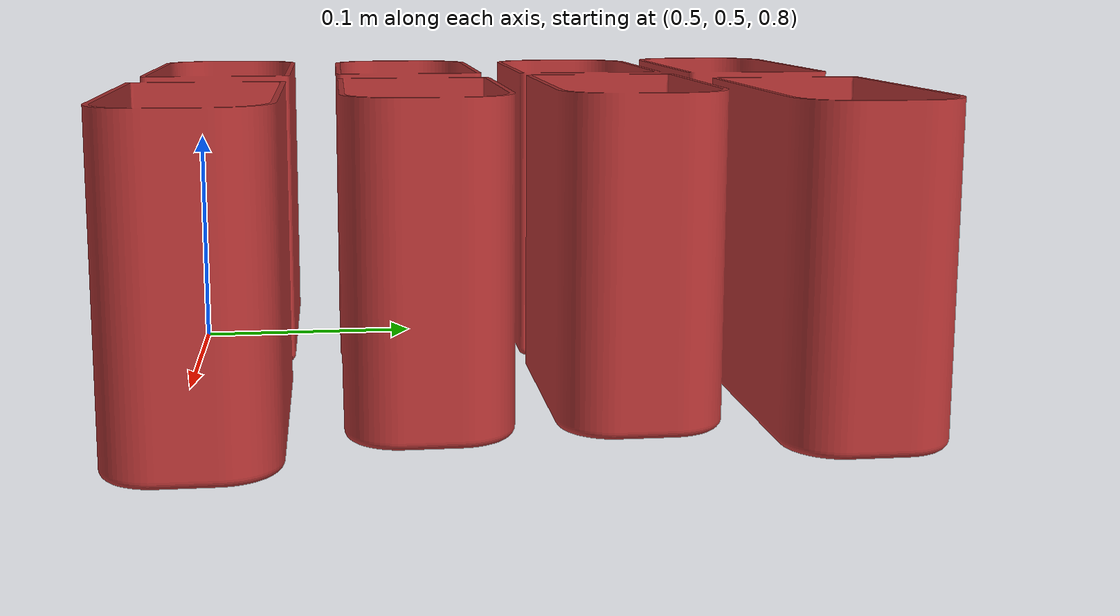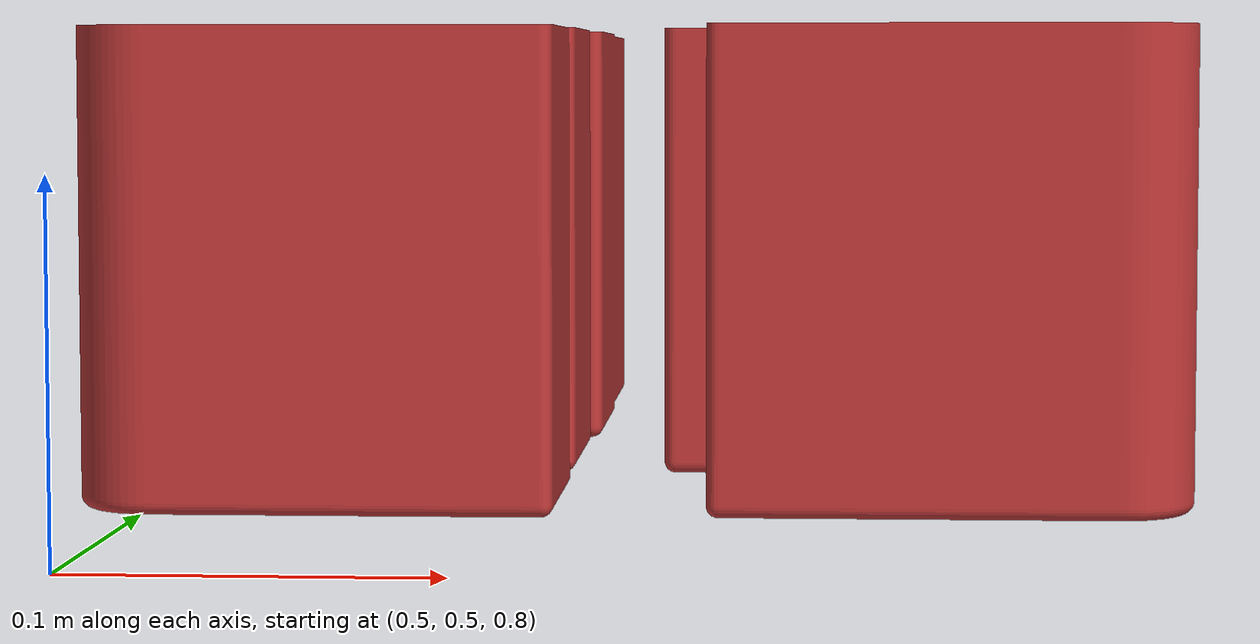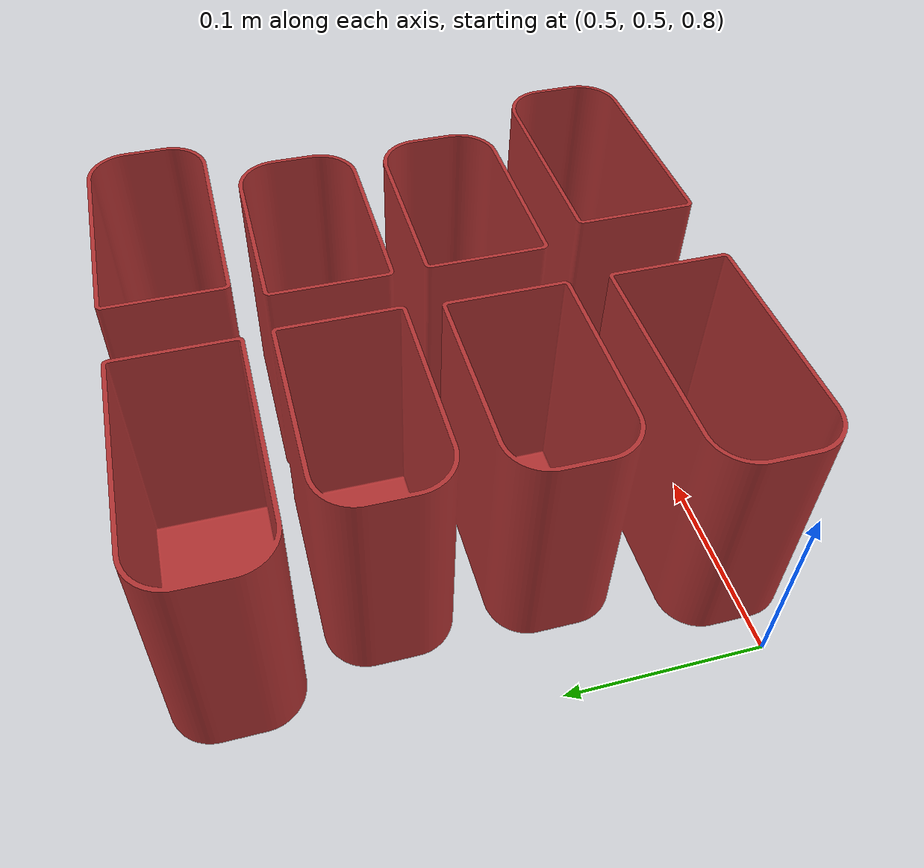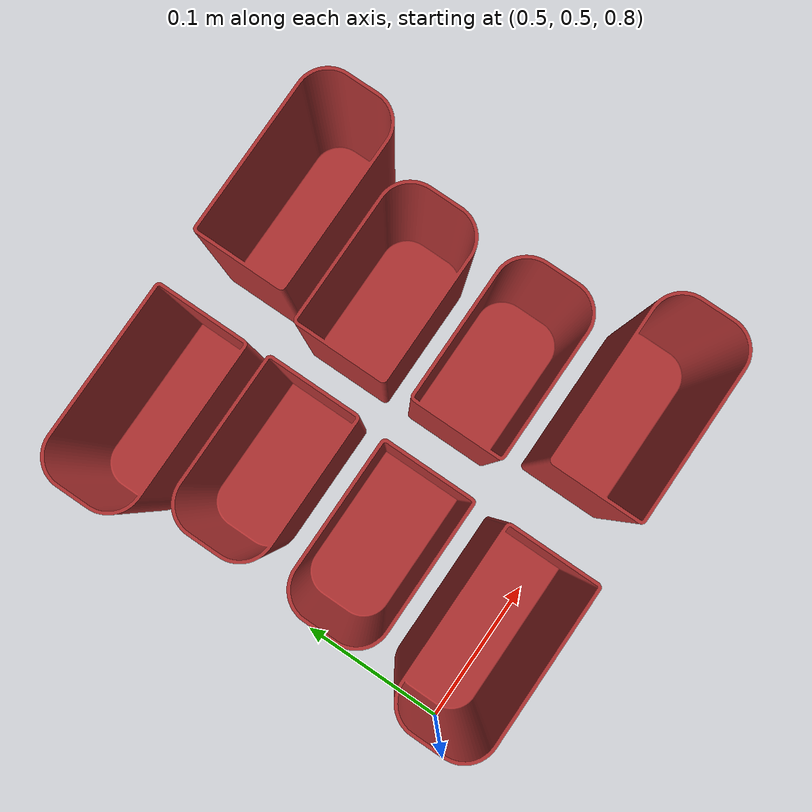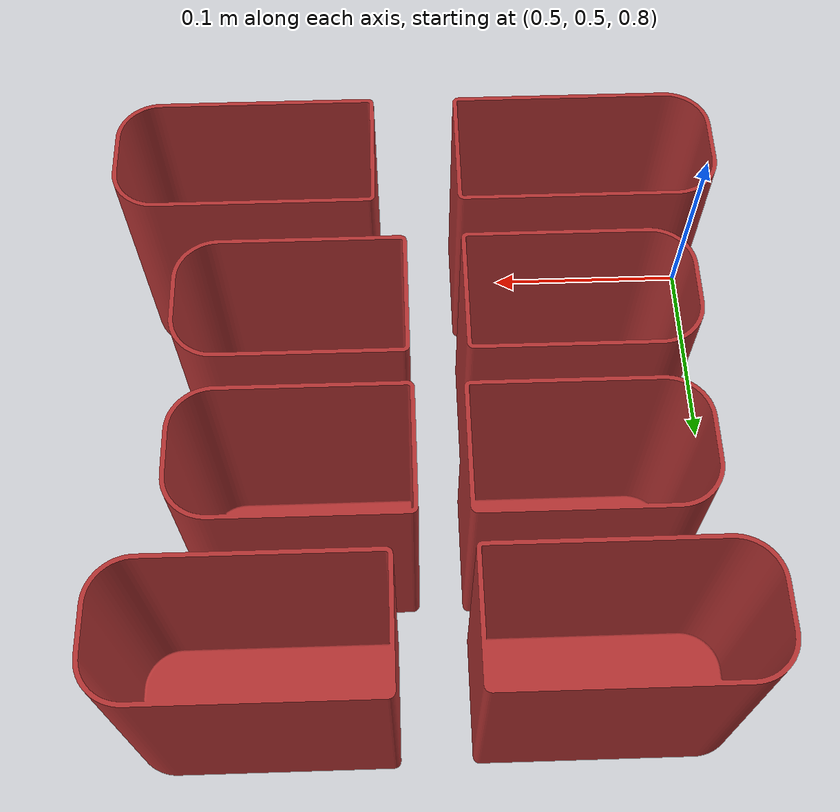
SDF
<sdf version="1.6">
  <model name="container_5">
    <static>true</static>

    <!-- ✅ Position in world -->
    <pose>0.2 0.0 0.08 0 0 0</pose>

    <link name="link">

      <!-- 🔵 Visual -->
      <visual name="visual">
        <geometry>
          <mesh>
            <uri>file:///home/mirage/Projects/posha_ws/src/piper_task/meshes/container.stl</uri>
            <scale>0.001 0.001 0.001</scale>
          </mesh>
        </geometry>

        <!-- ✅ Material (prevents invisible rendering) -->
        <material>
          <ambient>0.7 0.2 0.2 1</ambient>
          <diffuse>0.7 0.2 0.2 1</diffuse>
        </material>
      </visual>

      <!-- 🔴 Collision -->
      <collision name="collision">
        <geometry>
          <mesh>
            <uri>file:///home/mirage/Projects/posha_ws/src/piper_task/meshes/container.stl</uri>
            <scale>0.001 0.001 0.001</scale>
          </mesh>
        </geometry>
      </collision>

    </link>
  </model>
</sdf>
